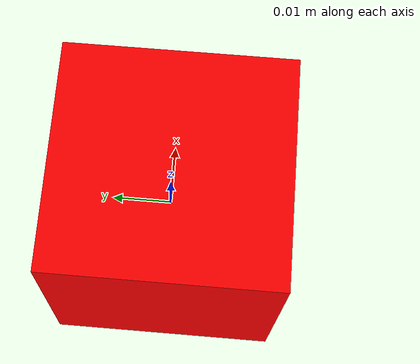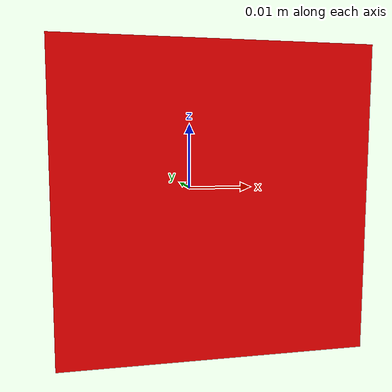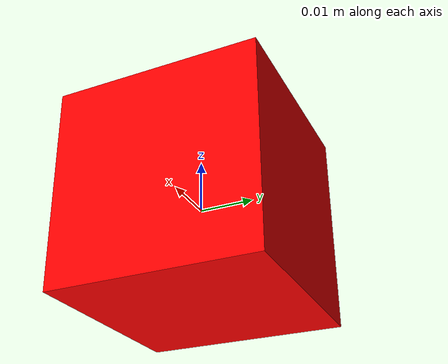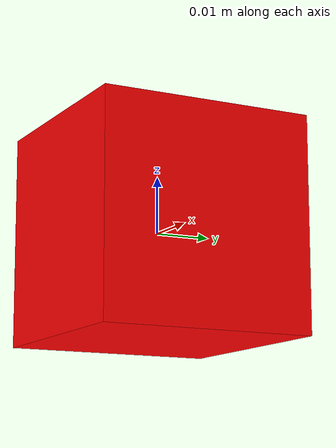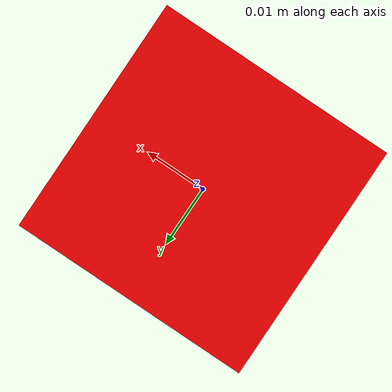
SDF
<?xml version='1.0'?>
<sdf version="1.6">
  <model name="block">
    <pose>0 0 0 0 0 0</pose>
    <static>false</static>
    <link name="link">
      <inertial>
        <mass>0.039</mass> <!-- 39 grams or so per my scale -->
        <inertia> <!-- inertias are tricky to compute -->
          <!-- http://gazebosim.org/tutorials?tut=inertia&cat=build_robot -->
          <ixx>0.000009348</ixx>       <!-- for a box: ixx = 0.083 * mass * (y*y + z*z) -->
          <ixy>0.0</ixy>         <!-- for a box: ixy = 0 -->
          <ixz>0.0</ixz>         <!-- for a box: ixz = 0 -->
          <iyy>0.000009348</iyy>       <!-- for a box: iyy = 0.083 * mass * (x*x + z*z) -->
          <iyz>0.0</iyz>         <!-- for a box: iyz = 0 -->
          <izz>0.000009348</izz>       <!-- for a box: izz = 0.083 * mass * (x*x + y*y) -->
        </inertia>
      </inertial>
      <collision name="collision">
        <geometry>
          <box>
            <size>0.038 0.038 0.038</size> <!-- average 38 mm per side -->
          </box>
        </geometry>
        <surface>
          <friction>
            <ode>
              <mu>1000.0</mu>
              <mu2>1000.0</mu2>
            </ode>
          </friction>
          <contact>
            <ode>
              <kp>1000000.0</kp>
              <kd>1.5</kd>
              <max_vel>0.0</max_vel>
              <min_depth>0.003</min_depth>
            </ode>
          </contact>
        </surface>
      </collision>
      <visual name="visual">
        <geometry>
          <box>
            <size>0.038 0.038 0.038</size> <!-- average 38 mm per side -->
          </box>
        </geometry>
          <material>
            <ambient>1 0 0 1</ambient>
            <diffuse>1 0 0 1</diffuse>
            <specular>0.1 0.1 0.1 1</specular>
            <emissive>0 0 0 0</emissive>
        </material>
      </visual>
    </link>
  </model>
</sdf>
